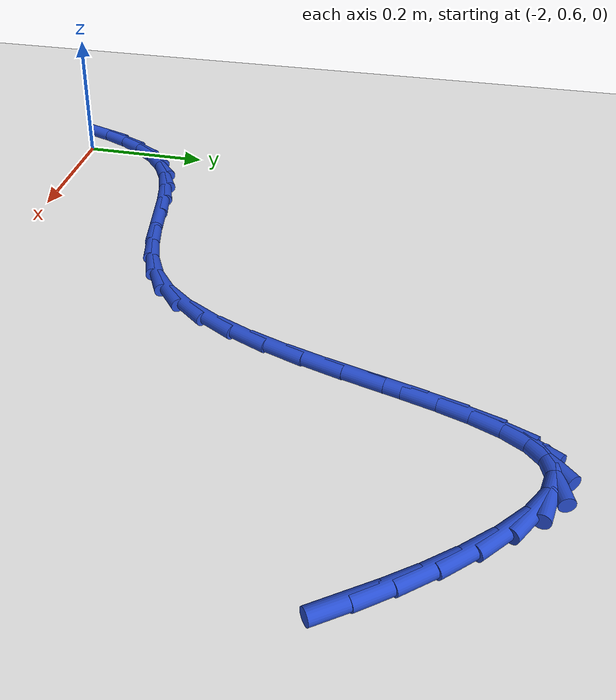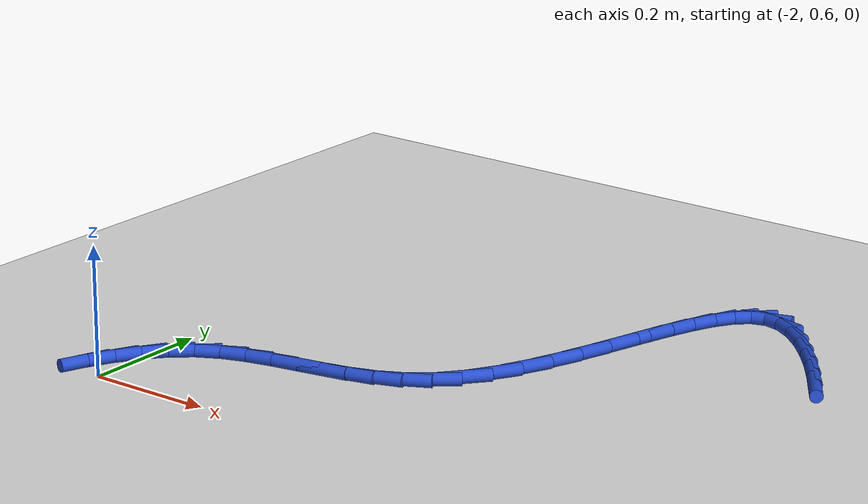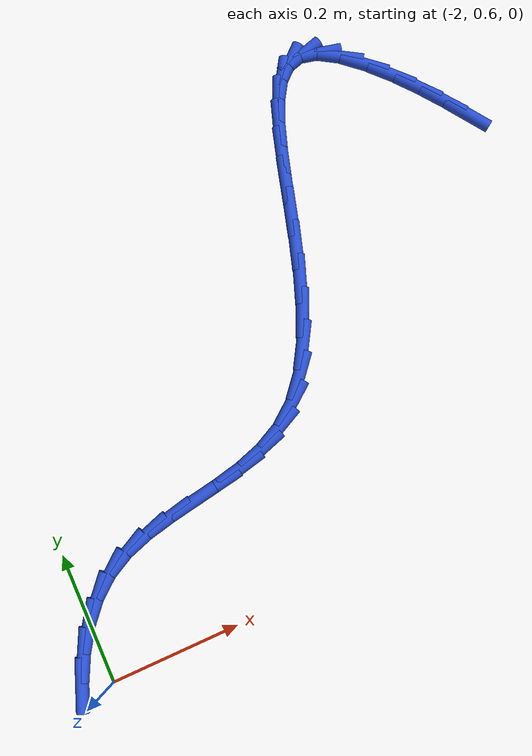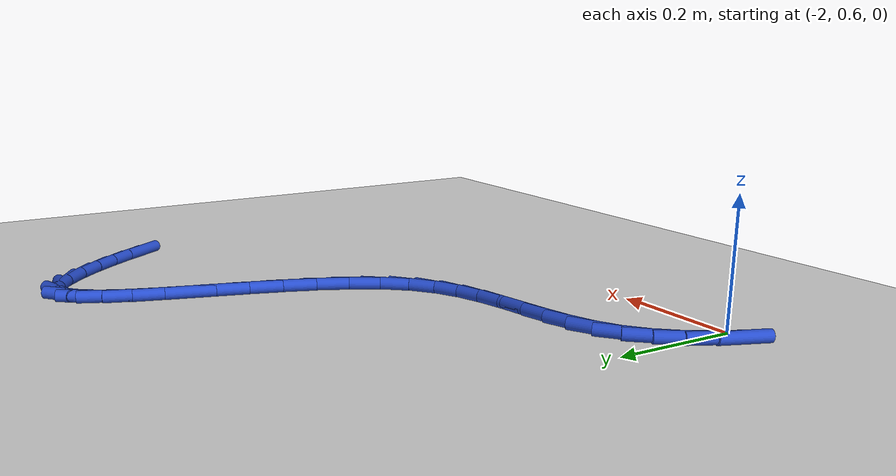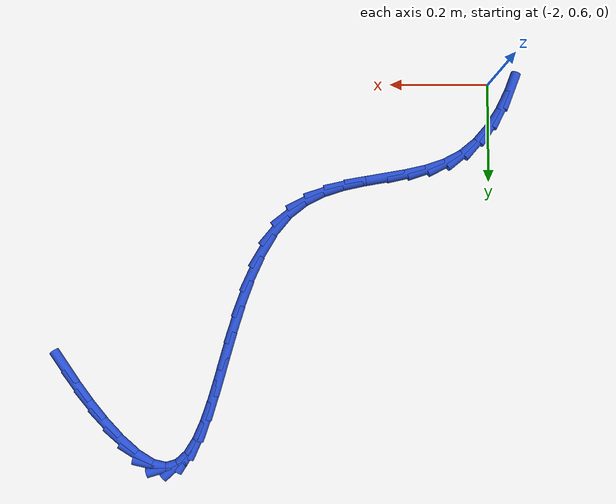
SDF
<sdf version="1.6">
 <world name="default">
  <model name="ground_plane">
   <static>1</static>
   <link name="link">
    <collision name="collision">
     <geometry><plane><normal>0 0 1</normal><size>100 100</size></plane></geometry>
     <surface><friction><ode><mu>100</mu><mu2>50</mu2></ode></friction></surface>
    </collision>
    <visual name="visual">
     <cast_shadows>0</cast_shadows>
     <geometry><plane><normal>0 0 1</normal><size>100 100</size></plane></geometry>
     <material>
      <script><uri>file://media/materials/scripts/gazebo.material</uri><name>Gazebo/WhiteGlow</name></script>
     </material>
    </visual>
   </link>
  </model>
  <model name="line">
   <link name="link_48">
    <pose>-1.1459184170426593 1.1798430843185308 0.01 0 1.57 -0.9661085560042411</pose>
    <collision name="collision">
     <geometry><cylinder><radius>0.01</radius><length>0.08</length></cylinder></geometry>
    </collision>
    <visual name="visual">
     <material>
      <script><name>Gazebo/Blue</name><uri>file://media/materials/scripts/gazebo.material</uri></script>
     </material>
     <geometry><cylinder><radius>0.01</radius><length>0.08</length></cylinder></geometry>
    </visual>
   </link>
   <link name="link_49">
    <pose>-1.1709989915370824 1.2161369943996574 0.01 0 1.57 -0.9285531446263314</pose>
    <collision name="collision">
     <geometry><cylinder><radius>0.01</radius><length>0.08</length></cylinder></geometry>
    </collision>
    <visual name="visual">
     <material>
      <script><name>Gazebo/Blue</name><uri>file://media/materials/scripts/gazebo.material</uri></script>
     </material>
     <geometry><cylinder><radius>0.01</radius><length>0.08</length></cylinder></geometry>
    </visual>
   </link>
   <link name="link_50">
    <pose>-1.198326615764909 1.2526694764758117 0.01 0 1.57 -0.8781080014655945</pose>
    <collision name="collision">
     <geometry><cylinder><radius>0.01</radius><length>0.08</length></cylinder></geometry>
    </collision>
    <visual name="visual">
     <material>
      <script><name>Gazebo/Blue</name><uri>file://media/materials/scripts/gazebo.material</uri></script>
     </material>
     <geometry><cylinder><radius>0.01</radius><length>0.08</length></cylinder></geometry>
    </visual>
   </link>
   <link name="link_51">
    <pose>-1.22851689410118 1.2890491912320328 0.01 0 1.57 -0.8127220401557662</pose>
    <collision name="collision">
     <geometry><cylinder><radius>0.01</radius><length>0.08</length></cylinder></geometry>
    </collision>
    <visual name="visual">
     <material>
      <script><name>Gazebo/Blue</name><uri>file://media/materials/scripts/gazebo.material</uri></script>
     </material>
     <geometry><cylinder><radius>0.01</radius><length>0.08</length></cylinder></geometry>
    </visual>
   </link>
   <link name="link_52">
    <pose>-1.260803827052172 1.3231505615723282 0.01 0 1.57 -0.7161709486386947</pose>
    <collision name="collision">
     <geometry><cylinder><radius>0.01</radius><length>0.08</length></cylinder></geometry>
    </collision>
    <visual name="visual">
     <material>
      <script><name>Gazebo/Blue</name><uri>file://media/materials/scripts/gazebo.material</uri></script>
     </material>
     <geometry><cylinder><radius>0.01</radius><length>0.08</length></cylinder></geometry>
    </visual>
   </link>
   <link name="link_53">
    <pose>-1.2932795545349434 1.3514147068183548 0.01 0 1.57 -0.5497387924867193</pose>
    <collision name="collision">
     <geometry><cylinder><radius>0.01</radius><length>0.08</length></cylinder></geometry>
    </collision>
    <visual name="visual">
     <material>
      <script><name>Gazebo/Blue</name><uri>file://media/materials/scripts/gazebo.material</uri></script>
     </material>
     <geometry><cylinder><radius>0.01</radius><length>0.08</length></cylinder></geometry>
    </visual>
   </link>
   <link name="link_54">
    <pose>-1.3240019408494101 1.3702397223313105 0.01 0 1.57 -0.21931060222069204</pose>
    <collision name="collision">
     <geometry><cylinder><radius>0.01</radius><length>0.08</length></cylinder></geometry>
    </collision>
    <visual name="visual">
     <material>
      <script><name>Gazebo/Blue</name><uri>file://media/materials/scripts/gazebo.material</uri></script>
     </material>
     <geometry><cylinder><radius>0.01</radius><length>0.08</length></cylinder></geometry>
    </visual>
   </link>
   <link name="link_55">
    <pose>-1.351162445207441 1.3762936809147073 0.01 0 1.57 0.29207988981076444</pose>
    <collision name="collision">
     <geometry><cylinder><radius>0.01</radius><length>0.08</length></cylinder></geometry>
    </collision>
    <visual name="visual">
     <material>
      <script><name>Gazebo/Blue</name><uri>file://media/materials/scripts/gazebo.material</uri></script>
     </material>
     <geometry><cylinder><radius>0.01</radius><length>0.08</length></cylinder></geometry>
    </visual>
   </link>
   <link name="link_56">
    <pose>-1.374458936680389 1.3692889081432986 0.01 0 1.57 0.7425917595814879</pose>
    <collision name="collision">
     <geometry><cylinder><radius>0.01</radius><length>0.08</length></cylinder></geometry>
    </collision>
    <visual name="visual">
     <material>
      <script><name>Gazebo/Blue</name><uri>file://media/materials/scripts/gazebo.material</uri></script>
     </material>
     <geometry><cylinder><radius>0.01</radius><length>0.08</length></cylinder></geometry>
    </visual>
   </link>
   <link name="link_57">
    <pose>-1.394539468112577 1.35085792386423 0.01 0 1.57 1.0146006849666114</pose>
    <collision name="collision">
     <geometry><cylinder><radius>0.01</radius><length>0.08</length></cylinder></geometry>
    </collision>
    <visual name="visual">
     <material>
      <script><name>Gazebo/Blue</name><uri>file://media/materials/scripts/gazebo.material</uri></script>
     </material>
     <geometry><cylinder><radius>0.01</radius><length>0.08</length></cylinder></geometry>
    </visual>
   </link>
   <link name="link_58">
    <pose>-1.4120669820242775 1.3226633379675323 0.01 0 1.57 1.1639929975273127</pose>
    <collision name="collision">
     <geometry><cylinder><radius>0.01</radius><length>0.08</length></cylinder></geometry>
    </collision>
    <visual name="visual">
     <material>
      <script><name>Gazebo/Blue</name><uri>file://media/materials/scripts/gazebo.material</uri></script>
     </material>
     <geometry><cylinder><radius>0.01</radius><length>0.08</length></cylinder></geometry>
    </visual>
   </link>
   <link name="link_59">
    <pose>-1.4277044209357659 1.2863677603432375 0.01 0 1.57 1.2455610924468612</pose>
    <collision name="collision">
     <geometry><cylinder><radius>0.01</radius><length>0.08</length></cylinder></geometry>
    </collision>
    <visual name="visual">
     <material>
      <script><name>Gazebo/Blue</name><uri>file://media/materials/scripts/gazebo.material</uri></script>
     </material>
     <geometry><cylinder><radius>0.01</radius><length>0.08</length></cylinder></geometry>
    </visual>
   </link>
   <link name="link_60">
    <pose>-1.4421147273673145 1.2436338008813768 0.01 0 1.57 1.2872134475839898</pose>
    <collision name="collision">
     <geometry><cylinder><radius>0.01</radius><length>0.08</length></cylinder></geometry>
    </collision>
    <visual name="visual">
     <material>
      <script><name>Gazebo/Blue</name><uri>file://media/materials/scripts/gazebo.material</uri></script>
     </material>
     <geometry><cylinder><radius>0.01</radius><length>0.08</length></cylinder></geometry>
    </visual>
   </link>
   <link name="link_61">
    <pose>-1.4559608438391982 1.196124069471983 0.01 0 1.57 1.3019972420515635</pose>
    <collision name="collision">
     <geometry><cylinder><radius>0.01</radius><length>0.08</length></cylinder></geometry>
    </collision>
    <visual name="visual">
     <material>
      <script><name>Gazebo/Blue</name><uri>file://media/materials/scripts/gazebo.material</uri></script>
     </material>
     <geometry><cylinder><radius>0.01</radius><length>0.08</length></cylinder></geometry>
    </visual>
   </link>
   <link name="link_62">
    <pose>-1.4699057128716906 1.1455011760050868 0.01 0 1.57 1.2955452986261684</pose>
    <collision name="collision">
     <geometry><cylinder><radius>0.01</radius><length>0.08</length></cylinder></geometry>
    </collision>
    <visual name="visual">
     <material>
      <script><name>Gazebo/Blue</name><uri>file://media/materials/scripts/gazebo.material</uri></script>
     </material>
     <geometry><cylinder><radius>0.01</radius><length>0.08</length></cylinder></geometry>
    </visual>
   </link>
   <link name="link_63">
    <pose>-1.484612276985065 1.0934277303707205 0.01 0 1.57 1.2692379750336242</pose>
    <collision name="collision">
     <geometry><cylinder><radius>0.01</radius><length>0.08</length></cylinder></geometry>
    </collision>
    <visual name="visual">
     <material>
      <script><name>Gazebo/Blue</name><uri>file://media/materials/scripts/gazebo.material</uri></script>
     </material>
     <geometry><cylinder><radius>0.01</radius><length>0.08</length></cylinder></geometry>
    </visual>
   </link>
   <link name="link_64">
    <pose>-1.5007434786995952 1.0415663424589154 0.01 0 1.57 1.2212870905643312</pose>
    <collision name="collision">
     <geometry><cylinder><radius>0.01</radius><length>0.08</length></cylinder></geometry>
    </collision>
    <visual name="visual">
     <material>
      <script><name>Gazebo/Blue</name><uri>file://media/materials/scripts/gazebo.material</uri></script>
     </material>
     <geometry><cylinder><radius>0.01</radius><length>0.08</length></cylinder></geometry>
    </visual>
   </link>
   <link name="link_65">
    <pose>-1.5189622605355555 0.9915796221597035 0.01 0 1.57 1.1467425360948533</pose>
    <collision name="collision">
     <geometry><cylinder><radius>0.01</radius><length>0.08</length></cylinder></geometry>
    </collision>
    <visual name="visual">
     <material>
      <script><name>Gazebo/Blue</name><uri>file://media/materials/scripts/gazebo.material</uri></script>
     </material>
     <geometry><cylinder><radius>0.01</radius><length>0.08</length></cylinder></geometry>
    </visual>
   </link>
   <link name="link_66">
    <pose>-1.53993156501322 0.9451301793631166 0.01 0 1.57 1.0369438177246564</pose>
    <collision name="collision">
     <geometry><cylinder><radius>0.01</radius><length>0.08</length></cylinder></geometry>
    </collision>
    <visual name="visual">
     <material>
      <script><name>Gazebo/Blue</name><uri>file://media/materials/scripts/gazebo.material</uri></script>
     </material>
     <geometry><cylinder><radius>0.01</radius><length>0.08</length></cylinder></geometry>
    </visual>
   </link>
   <link name="link_67">
    <pose>-1.5643143346528616 0.9038806239591863 0.01 0 1.57 0.8794434792600202</pose>
    <collision name="collision">
     <geometry><cylinder><radius>0.01</radius><length>0.08</length></cylinder></geometry>
    </collision>
    <visual name="visual">
     <material>
      <script><name>Gazebo/Blue</name><uri>file://media/materials/scripts/gazebo.material</uri></script>
     </material>
     <geometry><cylinder><radius>0.01</radius><length>0.08</length></cylinder></geometry>
    </visual>
   </link>
   <link name="link_68">
    <pose>-1.592773511974754 0.869493565837944 0.01 0 1.57 0.6692314625230525</pose>
    <collision name="collision">
     <geometry><cylinder><radius>0.01</radius><length>0.08</length></cylinder></geometry>
    </collision>
    <visual name="visual">
     <material>
      <script><name>Gazebo/Blue</name><uri>file://media/materials/scripts/gazebo.material</uri></script>
     </material>
     <geometry><cylinder><radius>0.01</radius><length>0.08</length></cylinder></geometry>
    </visual>
   </link>
   <link name="link_69">
    <pose>-1.625829710944992 0.8433459798033992 0.01 0 1.57 0.46773969628238926</pose>
    <collision name="collision">
     <geometry><cylinder><radius>0.01</radius><length>0.08</length></cylinder></geometry>
    </collision>
    <visual name="visual">
     <material>
      <script><name>Gazebo/Blue</name><uri>file://media/materials/scripts/gazebo.material</uri></script>
     </material>
     <geometry><cylinder><radius>0.01</radius><length>0.08</length></cylinder></geometry>
    </visual>
   </link>
   <link name="link_70">
    <pose>-1.662908224545969 0.8246166724479618 0.01 0 1.57 0.3175477855886142</pose>
    <collision name="collision">
     <geometry><cylinder><radius>0.01</radius><length>0.08</length></cylinder></geometry>
    </collision>
    <visual name="visual">
     <material>
      <script><name>Gazebo/Blue</name><uri>file://media/materials/scripts/gazebo.material</uri></script>
     </material>
     <geometry><cylinder><radius>0.01</radius><length>0.08</length></cylinder></geometry>
    </visual>
   </link>
   <link name="link_71">
    <pose>-1.7029258974542574 0.8114640600677463 0.01 0 1.57 0.22136377452533826</pose>
    <collision name="collision">
     <geometry><cylinder><radius>0.01</radius><length>0.08</length></cylinder></geometry>
    </collision>
    <visual name="visual">
     <material>
      <script><name>Gazebo/Blue</name><uri>file://media/materials/scripts/gazebo.material</uri></script>
     </material>
     <geometry><cylinder><radius>0.01</radius><length>0.08</length></cylinder></geometry>
    </visual>
   </link>
   <link name="link_72">
    <pose>-1.7447967756332157 0.8020409423017258 0.01 0 1.57 0.1750462758483027</pose>
    <collision name="collision">
     <geometry><cylinder><radius>0.01</radius><length>0.08</length></cylinder></geometry>
    </collision>
    <visual name="visual">
     <material>
      <script><name>Gazebo/Blue</name><uri>file://media/materials/scripts/gazebo.material</uri></script>
     </material>
     <geometry><cylinder><radius>0.01</radius><length>0.08</length></cylinder></geometry>
    </visual>
   </link>
   <link name="link_73">
    <pose>-1.7874349050462008 0.794500118788874 0.01 0 1.57 0.1755336125361452</pose>
    <collision name="collision">
     <geometry><cylinder><radius>0.01</radius><length>0.08</length></cylinder></geometry>
    </collision>
    <visual name="visual">
     <material>
      <script><name>Gazebo/Blue</name><uri>file://media/materials/scripts/gazebo.material</uri></script>
     </material>
     <geometry><cylinder><radius>0.01</radius><length>0.08</length></cylinder></geometry>
    </visual>
   </link>
   <link name="link_74">
    <pose>-1.82975433165657 0.7869943891681641 0.01 0 1.57 0.22391870407483172</pose>
    <collision name="collision">
     <geometry><cylinder><radius>0.01</radius><length>0.08</length></cylinder></geometry>
    </collision>
    <visual name="visual">
     <material>
      <script><name>Gazebo/Blue</name><uri>file://media/materials/scripts/gazebo.material</uri></script>
     </material>
     <geometry><cylinder><radius>0.01</radius><length>0.08</length></cylinder></geometry>
    </visual>
   </link>
   <link name="link_75">
    <pose>-1.8706691014276802 0.7776765530785691 0.01 0 1.57 0.32570586607354196</pose>
    <collision name="collision">
     <geometry><cylinder><radius>0.01</radius><length>0.08</length></cylinder></geometry>
    </collision>
    <visual name="visual">
     <material>
      <script><name>Gazebo/Blue</name><uri>file://media/materials/scripts/gazebo.material</uri></script>
     </material>
     <geometry><cylinder><radius>0.01</radius><length>0.08</length></cylinder></geometry>
    </visual>
   </link>
   <link name="link_76">
    <pose>-1.9090932603228885 0.7646994101590626 0.01 0 1.57 0.48765469352245133</pose>
    <collision name="collision">
     <geometry><cylinder><radius>0.01</radius><length>0.08</length></cylinder></geometry>
    </collision>
    <visual name="visual">
     <material>
      <script><name>Gazebo/Blue</name><uri>file://media/materials/scripts/gazebo.material</uri></script>
     </material>
     <geometry><cylinder><radius>0.01</radius><length>0.08</length></cylinder></geometry>
    </visual>
   </link>
   <link name="link_77">
    <pose>-1.9439412997885903 0.7462167295690708 0.01 0 1.57 0.6888846750801644</pose>
    <collision name="collision">
     <geometry><cylinder><radius>0.01</radius><length>0.08</length></cylinder></geometry>
    </collision>
    <visual name="visual">
     <material>
      <script><name>Gazebo/Blue</name><uri>file://media/materials/scripts/gazebo.material</uri></script>
     </material>
     <geometry><cylinder><radius>0.01</radius><length>0.08</length></cylinder></geometry>
    </visual>
   </link>
   <link name="link_78">
    <pose>-1.974453420919056 0.721091133865743 0.01 0 1.57 0.8660433401253641</pose>
    <collision name="collision">
     <geometry><cylinder><radius>0.01</radius><length>0.08</length></cylinder></geometry>
    </collision>
    <visual name="visual">
     <material>
      <script><name>Gazebo/Blue</name><uri>file://media/materials/scripts/gazebo.material</uri></script>
     </material>
     <geometry><cylinder><radius>0.01</radius><length>0.08</length></cylinder></geometry>
    </visual>
   </link>
   <link name="link_79">
    <pose>-2.0007707052235726 0.6901458634365524 0.01 0 1.57 1.0088813632612788</pose>
    <collision name="collision">
     <geometry><cylinder><radius>0.01</radius><length>0.08</length></cylinder></geometry>
    </collision>
    <visual name="visual">
     <material>
      <script><name>Gazebo/Blue</name><uri>file://media/materials/scripts/gazebo.material</uri></script>
     </material>
     <geometry><cylinder><radius>0.01</radius><length>0.08</length></cylinder></geometry>
    </visual>
   </link>
   <link name="link_80">
    <pose>-2.023188690385943 0.6545403070907864 0.01 0 1.57 1.1223804548551266</pose>
    <collision name="collision">
     <geometry><cylinder><radius>0.01</radius><length>0.08</length></cylinder></geometry>
    </collision>
    <visual name="visual">
     <material>
      <script><name>Gazebo/Blue</name><uri>file://media/materials/scripts/gazebo.material</uri></script>
     </material>
     <geometry><cylinder><radius>0.01</radius><length>0.08</length></cylinder></geometry>
    </visual>
   </link>
   <link name="link_81">
    <pose>-2.042002914089967 0.6154338536377314 0.01 0 1.57 1.2128082125450559</pose>
    <collision name="collision">
     <geometry><cylinder><radius>0.01</radius><length>0.08</length></cylinder></geometry>
    </collision>
    <visual name="visual">
     <material>
      <script><name>Gazebo/Blue</name><uri>file://media/materials/scripts/gazebo.material</uri></script>
     </material>
     <geometry><cylinder><radius>0.01</radius><length>0.08</length></cylinder></geometry>
    </visual>
   </link>
  </model>
 </world>
</sdf>
